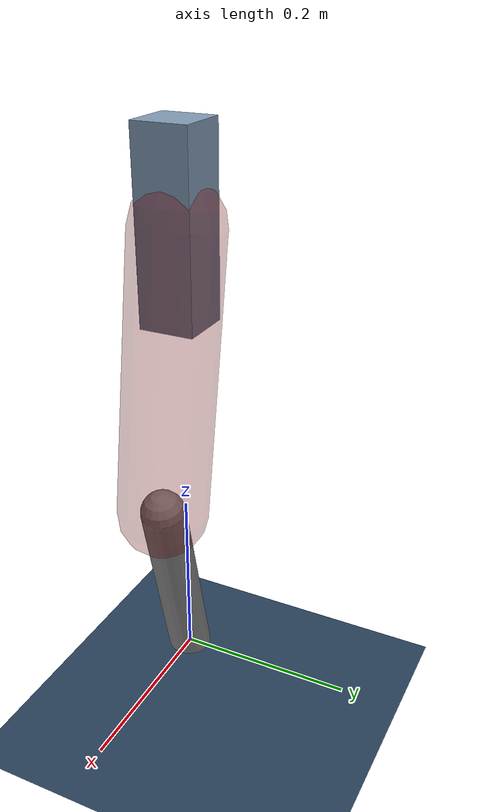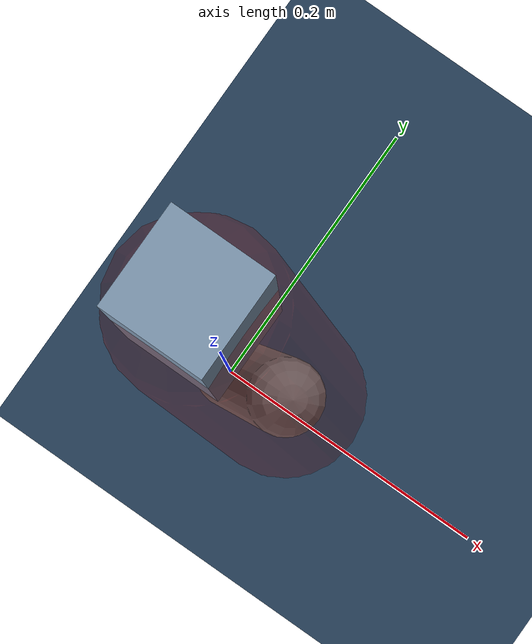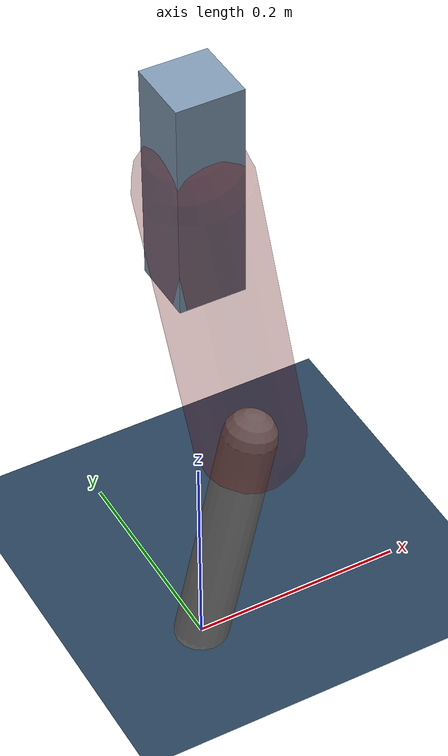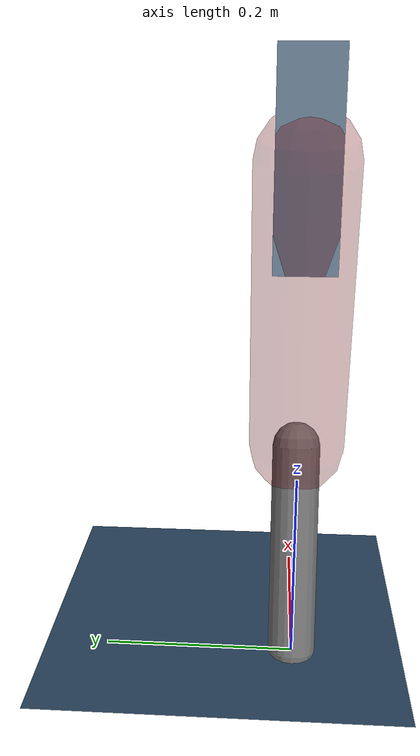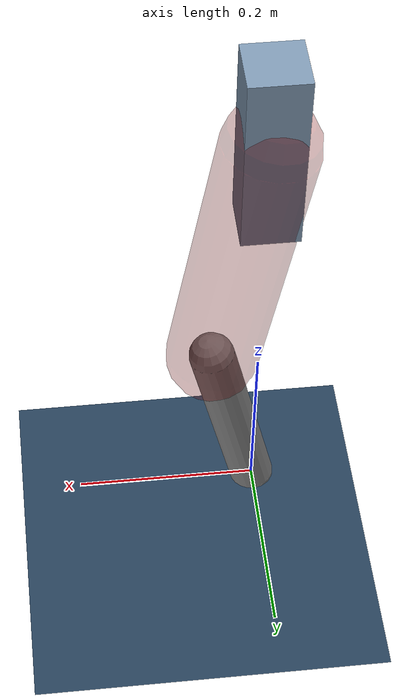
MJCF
<mujoco model="Hopper2D">
	<compiler inertiafromgeom="true" angle="radian" />
	<option timestep="0.001" integrator="implicit" cone="elliptic" solver="Newton" tolerance="1e-10" />

	<default>
		<geom contype="1" conaffinity="1" condim="3" friction="2 0.005 0.0001" solref="0.005 1" />
		<joint limited="true" damping="0.1" />
	</default>

	<asset>
		<texture name="skybox" type="skybox" builtin="gradient" rgb1=".4 .6 .8" rgb2="0 0 0" width="800" height="800" />
		<texture name="grid" type="2d" builtin="checker" rgb1=".1 .2 .3" rgb2=".2 .3 .4" width="300" height="300" mark="edge" markrgb=".2 .3 .4" />
		<material name="ground" texture="grid" texrepeat="1 1" texuniform="true" reflectance="0.1" />
		<material name="leg" rgba="0.5 0.6 0.7 1" />
	</asset>

	<worldbody>

		<geom name="floor" type="plane" size="5 5 0.25" material="ground" />

		<light directional="false" diffuse="0.8 0.8 0.8" specular="0.3 0.3 0.3" pos="0 0 2" dir="0 0 -1" />
		<light mode="targetbodycom" target="base" directional="false" diffuse="0.8 0.8 0.8" specular="0.3 0.3 0.3" pos="0 0 2" dir="0 0 -1" />

		<camera name="fixed" pos="0 -2 1" xyaxes="1 0 0 0 0 1" />
		<camera name="tracking" mode="trackcom" pos="0 -3 1" />

		<body name="root" pos="0 0 0.5166971961561732">
			<joint name="slide_x" type="slide" axis="1 0 0" range="-100 100" />
			<joint name="slide_z" type="slide" axis="0 0 1" range="0 10" />

			<body name="base" pos="0 0 0">
				<geom name="torso" type="box" size="0.03 0.03 0.1" mass="3.482" material="leg" />

				<body name="link1" pos="0 0 0" euler="0 1.4033198161682383 0">
					<joint type="hinge" axis="0 -1 0" pos="0 0 0" name="hinge1" limited="true" range="-3.14 3.14" stiffness="0" damping="0.1" />
					<geom name="thigh" type="capsule" fromto="0 0 0 0.30279583218140266 0 0" size="0.05" rgba="0.5 0 0 0.3" mass="0.9963283301079274" />

					<body name="link2" pos="0.30279583218140266 0 0" euler="0 0.39486260901235176 0">
						<joint type="hinge" axis="0 -1 0" pos="0 0 0" name="hinge2" limited="true" range="-3.14 3.14" stiffness="0" damping="0.1" />
						<geom name="shank" type="capsule" fromto="0 0 0 0.22390136397477053 0 0" size="0.025" mass="0.4209210911798164" />

					</body>
				</body>
			</body>
		</body>
	</worldbody>

	<actuator>
		<motor name="torque1" joint="hinge1" ctrlrange="-94.93651723308594 94.93651723308594" ctrllimited="true" gear="1" />
		<motor name="torque2" joint="hinge2" ctrlrange="-135.31981101923228 135.31981101923228" ctrllimited="true" gear="1" />
	</actuator>
</mujoco>
